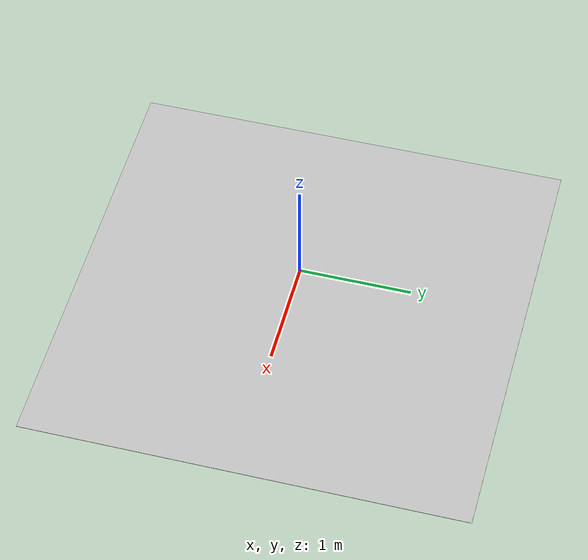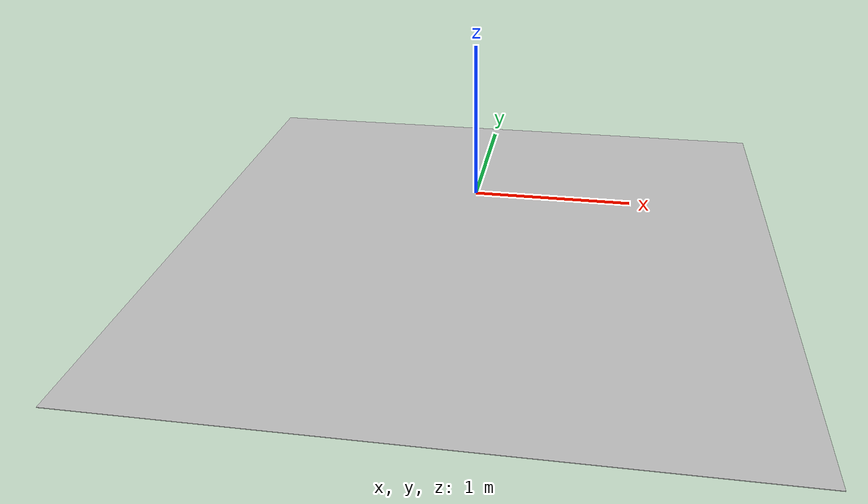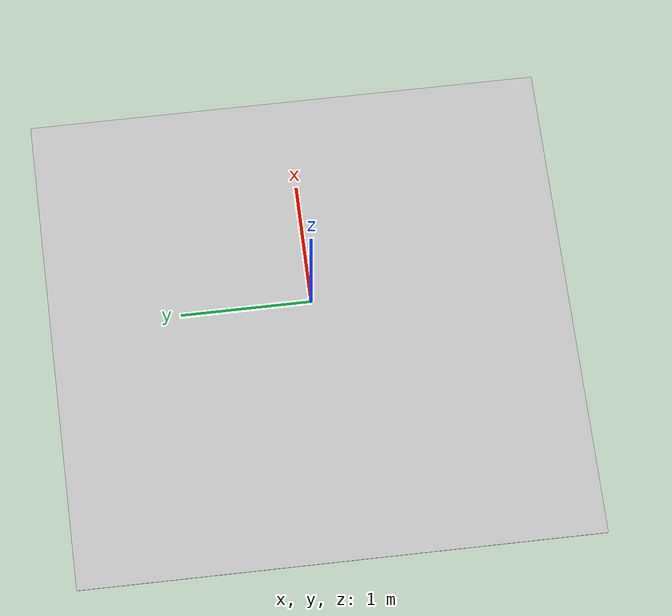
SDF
<?xml version="1.0" ?>
<sdf version="1.6">
    <world name="default">
        <gui>
            <camera name='user_camera'>
                <view_controller>orbit</view_controller>
                <projection_type>perspective</projection_type>
            </camera>
        </gui>

        <scene>
            <grid>false</grid>
            <origin_visual>false</origin_visual>
            <sky>
                <clouds>
                    <speed>12</speed>
                </clouds>
            </sky>
        </scene>

        <plugin name="arm_gazebo_ros" filename="libarm_gazebo_ros_plugin.so"/>

        <physics name="ode" type="ode">
            <max_step_size>0.01</max_step_size>
            <real_time_factor>1</real_time_factor>
            <real_time_update_rate>0</real_time_update_rate>
            <ode>
                <solver>
                    <island_threads>2</island_threads>
                    <type>quick</type>
                    <iters>100</iters>
                    <sor>1.0</sor> <!-- Important, see issue #2209 -->
                    <use_dynamic_moi_rescaling>false</use_dynamic_moi_rescaling>
                </solver>
            </ode>
        </physics>

        <include>
            <pose>0 0 -0.38 0 0 0</pose>
            <uri>model://my_ground_plane</uri>
        </include>
        <include>
            <uri>model://sun</uri>
        </include>
    </world>
</sdf>

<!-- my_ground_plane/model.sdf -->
<sdf version="1.5">
    <model name="my_ground_plane">
        <static>true</static>
            <allow_auto_disable>true</allow_auto_disable>
        <link name="link">
            <collision name="collision">
                <geometry>
                    <plane>
                        <normal>0 0 1</normal>
                        <size>4 4</size>
                    </plane>
                </geometry>
                <surface>
                    <friction>
                        <ode>
                            <mu>1000</mu>
                            <mu2>1000</mu2>
                        </ode>
                    </friction>
                    <contact>
                        <ode>
                            <kp>1e15</kp>
                            <kd>1e10</kd>
                        </ode>
                    </contact>
                </surface>
            </collision>
            <visual name="visual">
                <cast_shadows>false</cast_shadows>
                <geometry>
                    <plane>
                        <normal>0 0 1</normal>
                        <size>4 4</size>
                    </plane>
                </geometry>
                <material>
                    <script>
                        <uri>model://my_ground_plane/concrete.material</uri>
                        <name>ConcreteTexture</name>
                    </script>
                </material>
            </visual>
        </link>
    </model>
</sdf>
